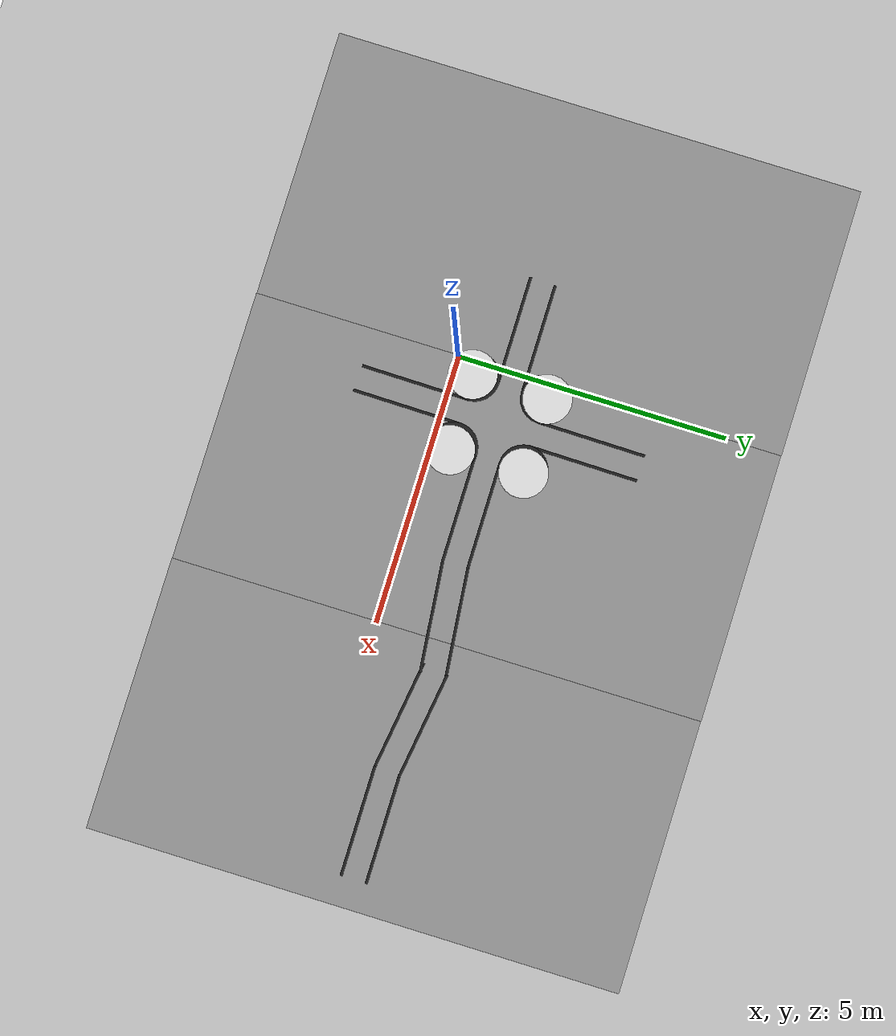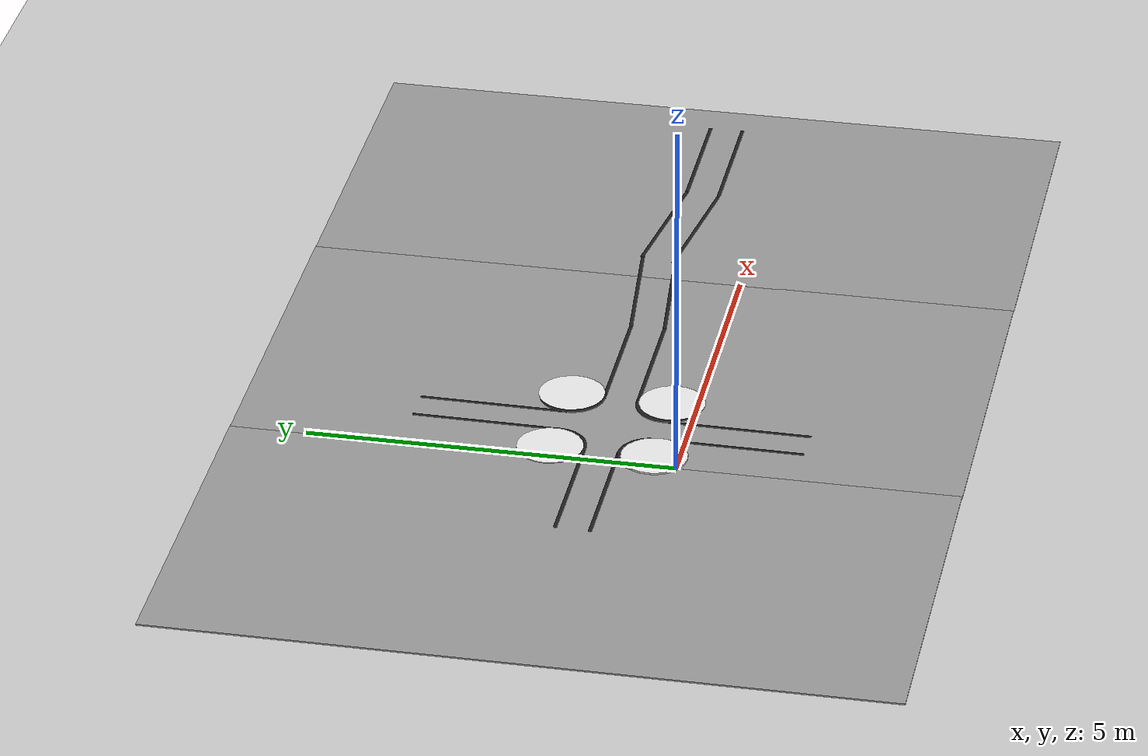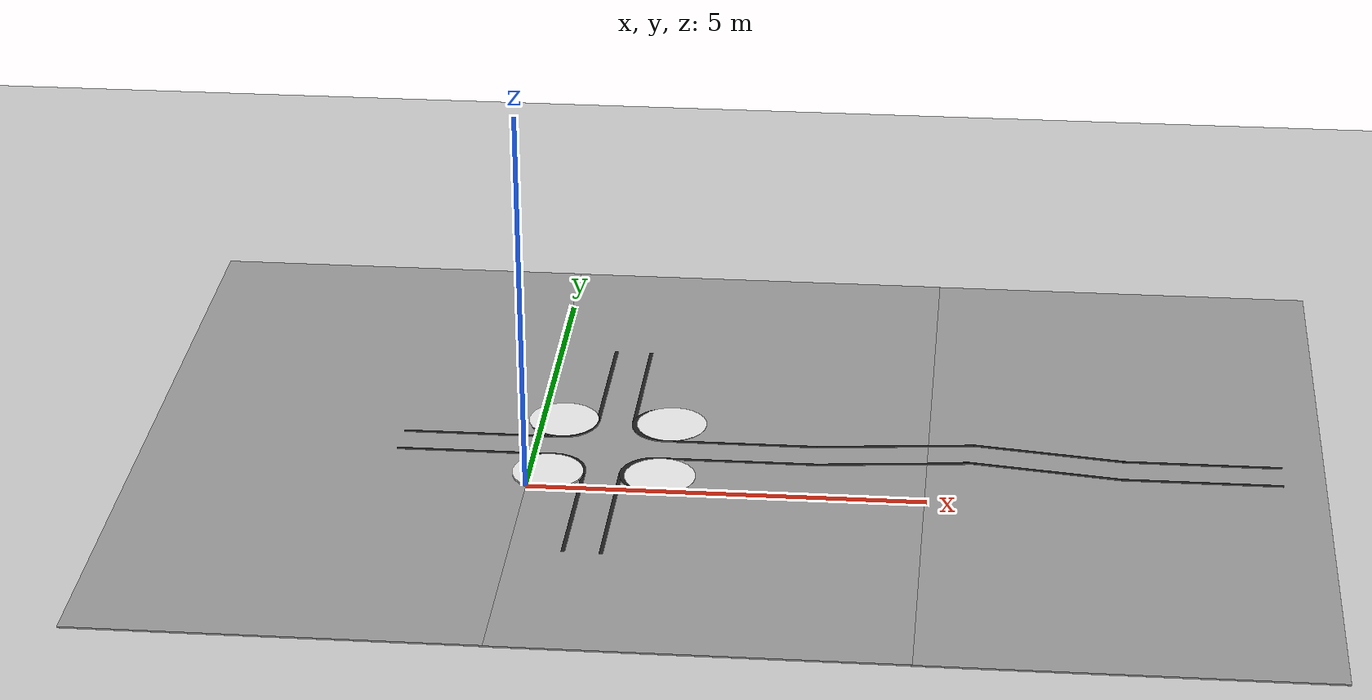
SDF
<sdf version="1.7">
 <world name="default">
  <model name="ground_plane">
   <static>1</static>
   <link name="link">
    <collision name="collision">
     <geometry><plane><normal>0 0 1</normal><size>100 100</size></plane></geometry>
     <surface>
      <contact><collide_bitmask>65535</collide_bitmask></contact>
      <friction><ode><mu>100</mu><mu2>50</mu2></ode></friction>
     </surface>
    </collision>
    <visual name="visual">
     <cast_shadows>0</cast_shadows>
     <geometry><plane><normal>0 0 1</normal><size>100 100</size></plane></geometry>
     <material>
      <script><uri>file://media/materials/scripts/gazebo.material</uri><name>Gazebo/Grey</name></script>
     </material>
    </visual>
   </link>
  </model>
  <gravity>0 0 -9.8</gravity>
  <magnetic_field>6e-06 2.3e-05 -4.2e-05</magnetic_field>
  <atmosphere type="adiabatic"/>
  <physics type="ode">
   <max_step_size>0.001</max_step_size>
   <real_time_factor>1</real_time_factor>
   <real_time_update_rate>1000</real_time_update_rate>
  </physics>
  <scene><ambient>0.4 0.4 0.4 1</ambient><background>0.25 0.25 0.25 1</background><shadows>0</shadows></scene>
  <spherical_coordinates>
   <surface_model>EARTH_WGS84</surface_model>
   <latitude_deg>0</latitude_deg>
   <longitude_deg>0</longitude_deg>
   <elevation>0</elevation>
   <heading_deg>0</heading_deg>
  </spherical_coordinates>
  <model name="white_area">
   <pose>-2.49595 1.12167 0 0 -0 0</pose>
   <link name="Wall_8">
    <collision name="Wall_8_Collision">
     <geometry><box><size>9.85018 5 0.02</size></box></geometry>
     <pose>0 0 0.001 0 -0 0</pose>
    </collision>
    <visual name="Wall_8_Visual">
     <pose>0 0 0.001 0 -0 0</pose>
     <geometry><box><size>9.85018 5 0.02</size></box></geometry>
     <material>
      <script><uri>file://media/materials/scripts/gazebo.material</uri><name>Gazebo/Grey</name></script>
      <ambient>1 1 1 1</ambient>
     </material>
     <meta><layer>0</layer></meta>
    </visual>
    <pose>-0 -0 0 0 -0 1.5708</pose>
   </link>
   <static>1</static>
  </model>
  <model name="white_area_0">
   <pose>2.47212 1.11475 0 0 -0 0</pose>
   <link name="Wall_8">
    <collision name="Wall_8_Collision">
     <geometry><box><size>9.85018 5 0.02</size></box></geometry>
     <pose>0 0 0.001 0 -0 0</pose>
    </collision>
    <visual name="Wall_8_Visual">
     <pose>0 0 0.001 0 -0 0</pose>
     <geometry><box><size>9.85018 5 0.02</size></box></geometry>
     <material>
      <script><uri>file://media/materials/scripts/gazebo.material</uri><name>Gazebo/Grey</name></script>
      <ambient>1 1 1 1</ambient>
     </material>
     <meta><layer>0</layer></meta>
    </visual>
    <pose>-0 -0 0 0 -0 1.5708</pose>
   </link>
   <static>1</static>
  </model>
  <model name="white_area_1">
   <pose>7.45615 1.10785 0 0 -0 0</pose>
   <link name="Wall_8">
    <collision name="Wall_8_Collision">
     <geometry><box><size>9.85018 5 0.02</size></box></geometry>
     <pose>0 0 0.001 0 -0 0</pose>
    </collision>
    <visual name="Wall_8_Visual">
     <pose>0 0 0.001 0 -0 0</pose>
     <geometry><box><size>9.85018 5 0.02</size></box></geometry>
     <material>
      <script><uri>file://media/materials/scripts/gazebo.material</uri><name>Gazebo/Grey</name></script>
      <ambient>1 1 1 1</ambient>
     </material>
     <meta><layer>0</layer></meta>
    </visual>
    <pose>-0 -0 0 0 -0 1.5708</pose>
   </link>
   <static>1</static>
  </model>
  <model name="basiccccc">
   <pose>9.19112 0.976898 0.00329 0 0 -1.57009</pose>
   <link name="Wall_0">
    <collision name="Wall_0_Collision">
     <geometry><box><size>2 0.05 0.008</size></box></geometry>
     <pose>0 0 0.004 0 -0 0</pose>
    </collision>
    <visual name="Wall_0_Visual">
     <pose>0 0 0.004 0 -0 0</pose>
     <geometry><box><size>2 0.05 0.008</size></box></geometry>
     <material>
      <script><uri>file://media/materials/scripts/gazebo.material</uri><name>Gazebo/Black</name></script>
      <ambient>1 1 1 1</ambient>
     </material>
     <meta><layer>0</layer></meta>
    </visual>
    <pose>-0.232459 -0.758004 0 0 -0 1.5708</pose>
   </link>
   <link name="Wall_4">
    <collision name="Wall_4_Collision">
     <geometry><box><size>2.01634 0.05 0.008</size></box></geometry>
     <pose>0 0 0.004 0 -0 0</pose>
    </collision>
    <visual name="Wall_4_Visual">
     <pose>0 0 0.004 0 -0 0</pose>
     <geometry><box><size>2.01634 0.05 0.008</size></box></geometry>
     <material>
      <script><uri>file://media/materials/scripts/gazebo.material</uri><name>Gazebo/Black</name></script>
      <ambient>1 1 1 1</ambient>
     </material>
     <meta><layer>0</layer></meta>
    </visual>
    <pose>0.232459 -0.7685 0 0 -0 1.5708</pose>
   </link>
   <static>1</static>
  </model>
  <model name="basiccccc_clone">
   <pose>7.21324 1.00927 0.00329 0 0 -1.71457</pose>
   <link name="Wall_0">
    <collision name="Wall_0_Collision">
     <geometry><box><size>2 0.05 0.008</size></box></geometry>
     <pose>0 0 0.004 0 -0 0</pose>
    </collision>
    <visual name="Wall_0_Visual">
     <pose>0 0 0.004 0 -0 0</pose>
     <geometry><box><size>2 0.05 0.008</size></box></geometry>
     <material>
      <script><uri>file://media/materials/scripts/gazebo.material</uri><name>Gazebo/Black</name></script>
      <ambient>1 1 1 1</ambient>
     </material>
     <meta><layer>0</layer></meta>
    </visual>
    <pose>-0.232459 -0.758004 0 0 -0 1.5708</pose>
   </link>
   <link name="Wall_4">
    <collision name="Wall_4_Collision">
     <geometry><box><size>2.01634 0.05 0.008</size></box></geometry>
     <pose>0 0 0.004 0 -0 0</pose>
    </collision>
    <visual name="Wall_4_Visual">
     <pose>0 0 0.004 0 -0 0</pose>
     <geometry><box><size>2.01634 0.05 0.008</size></box></geometry>
     <material>
      <script><uri>file://media/materials/scripts/gazebo.material</uri><name>Gazebo/Black</name></script>
      <ambient>1 1 1 1</ambient>
     </material>
     <meta><layer>0</layer></meta>
    </visual>
    <pose>0.232459 -0.7685 0 0 -0 1.5708</pose>
   </link>
   <static>1</static>
  </model>
  <model name="basiccccc_clone_0">
   <pose>5.33256 1.22542 0.00329 0 0 -1.4704</pose>
   <link name="Wall_0">
    <collision name="Wall_0_Collision">
     <geometry><box><size>2 0.05 0.008</size></box></geometry>
     <pose>0 0 0.004 0 -0 0</pose>
    </collision>
    <visual name="Wall_0_Visual">
     <pose>0 0 0.004 0 -0 0</pose>
     <geometry><box><size>2 0.05 0.008</size></box></geometry>
     <material>
      <script><uri>file://media/materials/scripts/gazebo.material</uri><name>Gazebo/Black</name></script>
      <ambient>1 1 1 1</ambient>
     </material>
     <meta><layer>0</layer></meta>
    </visual>
    <pose>-0.232459 -0.758004 0 0 -0 1.5708</pose>
   </link>
   <link name="Wall_4">
    <collision name="Wall_4_Collision">
     <geometry><box><size>2.01634 0.05 0.008</size></box></geometry>
     <pose>0 0 0.004 0 -0 0</pose>
    </collision>
    <visual name="Wall_4_Visual">
     <pose>0 0 0.004 0 -0 0</pose>
     <geometry><box><size>2.01634 0.05 0.008</size></box></geometry>
     <material>
      <script><uri>file://media/materials/scripts/gazebo.material</uri><name>Gazebo/Black</name></script>
      <ambient>1 1 1 1</ambient>
     </material>
     <meta><layer>0</layer></meta>
    </visual>
    <pose>0.232459 -0.7685 0 0 -0 1.5708</pose>
   </link>
   <static>1</static>
  </model>
  <model name="basiccccc_clone_1">
   <pose>3.35877 1.04766 0.00329 0 0 -1.57009</pose>
   <link name="Wall_0">
    <collision name="Wall_0_Collision">
     <geometry><box><size>2 0.05 0.008</size></box></geometry>
     <pose>0 0 0.004 0 -0 0</pose>
    </collision>
    <visual name="Wall_0_Visual">
     <pose>0 0 0.004 0 -0 0</pose>
     <geometry><box><size>2 0.05 0.008</size></box></geometry>
     <material>
      <script><uri>file://media/materials/scripts/gazebo.material</uri><name>Gazebo/Black</name></script>
      <ambient>1 1 1 1</ambient>
     </material>
     <meta><layer>0</layer></meta>
    </visual>
    <pose>-0.232459 -0.758004 0 0 -0 1.5708</pose>
   </link>
   <link name="Wall_4">
    <collision name="Wall_4_Collision">
     <geometry><box><size>2.01634 0.05 0.008</size></box></geometry>
     <pose>0 0 0.004 0 -0 0</pose>
    </collision>
    <visual name="Wall_4_Visual">
     <pose>0 0 0.004 0 -0 0</pose>
     <geometry><box><size>2.01634 0.05 0.008</size></box></geometry>
     <material>
      <script><uri>file://media/materials/scripts/gazebo.material</uri><name>Gazebo/Black</name></script>
      <ambient>1 1 1 1</ambient>
     </material>
     <meta><layer>0</layer></meta>
    </visual>
    <pose>0.232459 -0.7685 0 0 -0 1.5708</pose>
   </link>
   <static>1</static>
  </model>
  <model name="basiccccc_clone_1_clone">
   <pose>0.020048 1.05201 0.00329 0 0 -1.57009</pose>
   <link name="Wall_0">
    <collision name="Wall_0_Collision">
     <geometry><box><size>2 0.05 0.008</size></box></geometry>
     <pose>0 0 0.004 0 -0 0</pose>
    </collision>
    <visual name="Wall_0_Visual">
     <pose>0 0 0.004 0 -0 0</pose>
     <geometry><box><size>2 0.05 0.008</size></box></geometry>
     <material>
      <script><uri>file://media/materials/scripts/gazebo.material</uri><name>Gazebo/Black</name></script>
      <ambient>1 1 1 1</ambient>
     </material>
     <meta><layer>0</layer></meta>
    </visual>
    <pose>-0.232459 -0.758004 0 0 -0 1.5708</pose>
   </link>
   <link name="Wall_4">
    <collision name="Wall_4_Collision">
     <geometry><box><size>2.01634 0.05 0.008</size></box></geometry>
     <pose>0 0 0.004 0 -0 0</pose>
    </collision>
    <visual name="Wall_4_Visual">
     <pose>0 0 0.004 0 -0 0</pose>
     <geometry><box><size>2.01634 0.05 0.008</size></box></geometry>
     <material>
      <script><uri>file://media/materials/scripts/gazebo.material</uri><name>Gazebo/Black</name></script>
      <ambient>1 1 1 1</ambient>
     </material>
     <meta><layer>0</layer></meta>
    </visual>
    <pose>0.232459 -0.7685 0 0 -0 1.5708</pose>
   </link>
   <static>1</static>
  </model>
  <model name="basiccccc_0">
   <pose>1.81181 1.14404 -0.213173 0 -0 0</pose>
   <link name="Wall_0">
    <collision name="Wall_0_Collision">
     <geometry><cylinder><radius>0.45</radius><length>0.45</length></cylinder></geometry>
     <pose>0 0 0.004 0 -0 0</pose>
    </collision>
    <visual name="Wall_0_Visual">
     <pose>0 0 0.004 0 -0 0</pose>
     <geometry><cylinder><radius>0.45</radius><length>0.45</length></cylinder></geometry>
     <material>
      <script><uri>file://media/materials/scripts/gazebo.material</uri><name>Gazebo/Black</name></script>
      <ambient>1 1 1 1</ambient>
     </material>
     <meta><layer>0</layer></meta>
    </visual>
    <pose>-0.232459 -0.758004 0 0 -0 1.5708</pose>
   </link>
   <static>1</static>
  </model>
  <model name="basiccccc_0_clone">
   <pose>1.83522 2.4633 -0.213173 0 -0 0</pose>
   <link name="Wall_0">
    <collision name="Wall_0_Collision">
     <geometry><cylinder><radius>0.45</radius><length>0.45</length></cylinder></geometry>
     <pose>0 0 0.004 0 -0 0</pose>
    </collision>
    <visual name="Wall_0_Visual">
     <pose>0 0 0.004 0 -0 0</pose>
     <geometry><cylinder><radius>0.45</radius><length>0.45</length></cylinder></geometry>
     <material>
      <script><uri>file://media/materials/scripts/gazebo.material</uri><name>Gazebo/Black</name></script>
      <ambient>1 1 1 1</ambient>
     </material>
     <meta><layer>0</layer></meta>
    </visual>
    <pose>-0.232459 -0.758004 0 0 -0 1.5708</pose>
   </link>
   <static>1</static>
  </model>
  <model name="basiccccc_clone_1_clone_clone">
   <pose>0.916489 0.15672 0.00329 0 0 -0.01039</pose>
   <link name="Wall_0">
    <collision name="Wall_0_Collision">
     <geometry><box><size>2 0.05 0.008</size></box></geometry>
     <pose>0 0 0.004 0 -0 0</pose>
    </collision>
    <visual name="Wall_0_Visual">
     <pose>0 0 0.004 0 -0 0</pose>
     <geometry><box><size>2 0.05 0.008</size></box></geometry>
     <material>
      <script><uri>file://media/materials/scripts/gazebo.material</uri><name>Gazebo/Black</name></script>
      <ambient>1 1 1 1</ambient>
     </material>
     <meta><layer>0</layer></meta>
    </visual>
    <pose>-0.232459 -0.758004 0 0 -0 1.5708</pose>
   </link>
   <link name="Wall_4">
    <collision name="Wall_4_Collision">
     <geometry><box><size>2.01634 0.05 0.008</size></box></geometry>
     <pose>0 0 0.004 0 -0 0</pose>
    </collision>
    <visual name="Wall_4_Visual">
     <pose>0 0 0.004 0 -0 0</pose>
     <geometry><box><size>2.01634 0.05 0.008</size></box></geometry>
     <material>
      <script><uri>file://media/materials/scripts/gazebo.material</uri><name>Gazebo/Black</name></script>
      <ambient>1 1 1 1</ambient>
     </material>
     <meta><layer>0</layer></meta>
    </visual>
    <pose>0.232459 -0.7685 0 0 -0 1.5708</pose>
   </link>
   <static>1</static>
  </model>
  <model name="basiccccc_clone_1_clone_clone_clone">
   <pose>0.959794 3.47109 0.00329 0 0 -0.01039</pose>
   <link name="Wall_0">
    <collision name="Wall_0_Collision">
     <geometry><box><size>2 0.05 0.008</size></box></geometry>
     <pose>0 0 0.004 0 -0 0</pose>
    </collision>
    <visual name="Wall_0_Visual">
     <pose>0 0 0.004 0 -0 0</pose>
     <geometry><box><size>2 0.05 0.008</size></box></geometry>
     <material>
      <script><uri>file://media/materials/scripts/gazebo.material</uri><name>Gazebo/Black</name></script>
      <ambient>1 1 1 1</ambient>
     </material>
     <meta><layer>0</layer></meta>
    </visual>
    <pose>-0.232459 -0.758004 0 0 -0 1.5708</pose>
   </link>
   <link name="Wall_4">
    <collision name="Wall_4_Collision">
     <geometry><box><size>2.01634 0.05 0.008</size></box></geometry>
     <pose>0 0 0.004 0 -0 0</pose>
    </collision>
    <visual name="Wall_4_Visual">
     <pose>0 0 0.004 0 -0 0</pose>
     <geometry><box><size>2.01634 0.05 0.008</size></box></geometry>
     <material>
      <script><uri>file://media/materials/scripts/gazebo.material</uri><name>Gazebo/Black</name></script>
      <ambient>1 1 1 1</ambient>
     </material>
     <meta><layer>0</layer></meta>
    </visual>
    <pose>0.232459 -0.7685 0 0 -0 1.5708</pose>
   </link>
   <static>1</static>
  </model>
  <model name="basiccccc_0_clone_0">
   <pose>0.491833 1.14922 -0.213173 0 -0 0</pose>
   <link name="Wall_0">
    <collision name="Wall_0_Collision">
     <geometry><cylinder><radius>0.45</radius><length>0.45</length></cylinder></geometry>
     <pose>0 0 0.004 0 -0 0</pose>
    </collision>
    <visual name="Wall_0_Visual">
     <pose>0 0 0.004 0 -0 0</pose>
     <geometry><cylinder><radius>0.45</radius><length>0.45</length></cylinder></geometry>
     <material>
      <script><uri>file://media/materials/scripts/gazebo.material</uri><name>Gazebo/Black</name></script>
      <ambient>1 1 1 1</ambient>
     </material>
     <meta><layer>0</layer></meta>
    </visual>
    <pose>-0.232459 -0.758004 0 0 -0 1.5708</pose>
   </link>
   <static>1</static>
  </model>
  <model name="basiccccc_0_clone_0_clone">
   <pose>0.513743 2.46921 -0.213173 0 -0 0</pose>
   <link name="Wall_0">
    <collision name="Wall_0_Collision">
     <geometry><cylinder><radius>0.45</radius><length>0.45</length></cylinder></geometry>
     <pose>0 0 0.004 0 -0 0</pose>
    </collision>
    <visual name="Wall_0_Visual">
     <pose>0 0 0.004 0 -0 0</pose>
     <geometry><cylinder><radius>0.45</radius><length>0.45</length></cylinder></geometry>
     <material>
      <script><uri>file://media/materials/scripts/gazebo.material</uri><name>Gazebo/Black</name></script>
      <ambient>1 1 1 1</ambient>
     </material>
     <meta><layer>0</layer></meta>
    </visual>
    <pose>-0.232459 -0.758004 0 0 -0 1.5708</pose>
   </link>
   <static>1</static>
  </model>
  <model name="beyaz">
   <pose>1.87995 1.11215 -0.209889 0 -0 0</pose>
   <link name="Wall_0">
    <collision name="Wall_0_Collision">
     <geometry><cylinder><radius>0.45</radius><length>0.45</length></cylinder></geometry>
     <pose>0 0 0.004 0 -0 0</pose>
    </collision>
    <visual name="Wall_0_Visual">
     <pose>0 0 0.004 0 -0 0</pose>
     <geometry><cylinder><radius>0.45</radius><length>0.45</length></cylinder></geometry>
     <material>
      <script><uri>file://media/materials/scripts/gazebo.material</uri><name>Gazebo/White</name></script>
      <ambient>1 1 1 1</ambient>
     </material>
     <meta><layer>0</layer></meta>
    </visual>
    <pose>-0.232459 -0.758004 0 0 -0 1.5708</pose>
   </link>
   <static>1</static>
  </model>
  <model name="beyaz_clone">
   <pose>0.467758 1.09586 -0.194378 0 -0 0</pose>
   <link name="Wall_0">
    <collision name="Wall_0_Collision">
     <geometry><cylinder><radius>0.45</radius><length>0.45</length></cylinder></geometry>
     <pose>0 0 0.004 0 -0 0</pose>
    </collision>
    <visual name="Wall_0_Visual">
     <pose>0 0 0.004 0 -0 0</pose>
     <geometry><cylinder><radius>0.45</radius><length>0.45</length></cylinder></geometry>
     <material>
      <script><uri>file://media/materials/scripts/gazebo.material</uri><name>Gazebo/White</name></script>
      <ambient>1 1 1 1</ambient>
     </material>
     <meta><layer>0</layer></meta>
    </visual>
    <pose>-0.232459 -0.758004 0 0 -0 1.5708</pose>
   </link>
   <static>1</static>
  </model>
  <model name="beyaz_clone_0">
   <pose>1.89731 2.48795 -0.210277 0 -0 0</pose>
   <link name="Wall_0">
    <collision name="Wall_0_Collision">
     <geometry><cylinder><radius>0.45</radius><length>0.45</length></cylinder></geometry>
     <pose>0 0 0.004 0 -0 0</pose>
    </collision>
    <visual name="Wall_0_Visual">
     <pose>0 0 0.004 0 -0 0</pose>
     <geometry><cylinder><radius>0.45</radius><length>0.45</length></cylinder></geometry>
     <material>
      <script><uri>file://media/materials/scripts/gazebo.material</uri><name>Gazebo/White</name></script>
      <ambient>1 1 1 1</ambient>
     </material>
     <meta><layer>0</layer></meta>
    </visual>
    <pose>-0.232459 -0.758004 0 0 -0 1.5708</pose>
   </link>
   <static>1</static>
  </model>
  <model name="beyaz_clone_0_clone">
   <pose>0.497567 2.50726 -0.210277 0 -0 0</pose>
   <link name="Wall_0">
    <collision name="Wall_0_Collision">
     <geometry><cylinder><radius>0.45</radius><length>0.45</length></cylinder></geometry>
     <pose>0 0 0.004 0 -0 0</pose>
    </collision>
    <visual name="Wall_0_Visual">
     <pose>0 0 0.004 0 -0 0</pose>
     <geometry><cylinder><radius>0.45</radius><length>0.45</length></cylinder></geometry>
     <material>
      <script><uri>file://media/materials/scripts/gazebo.material</uri><name>Gazebo/White</name></script>
      <ambient>1 1 1 1</ambient>
     </material>
     <meta><layer>0</layer></meta>
    </visual>
    <pose>-0.232459 -0.758004 0 0 -0 1.5708</pose>
   </link>
   <static>1</static>
  </model>
  <light name="sun" type="directional">
   <pose>4.50083 -9.40763 10 0 -0 0</pose>
   <diffuse>0.8 0.8 0.8 1</diffuse>
   <specular>0.2 0.2 0.2 1</specular>
   <attenuation>
    <range>1000</range>
    <constant>0.9</constant>
    <linear>0.01</linear>
    <quadratic>0.001</quadratic>
   </attenuation>
   <direction>-0.5 0.1 -0.9</direction>
  </light>
 </world>
</sdf>
